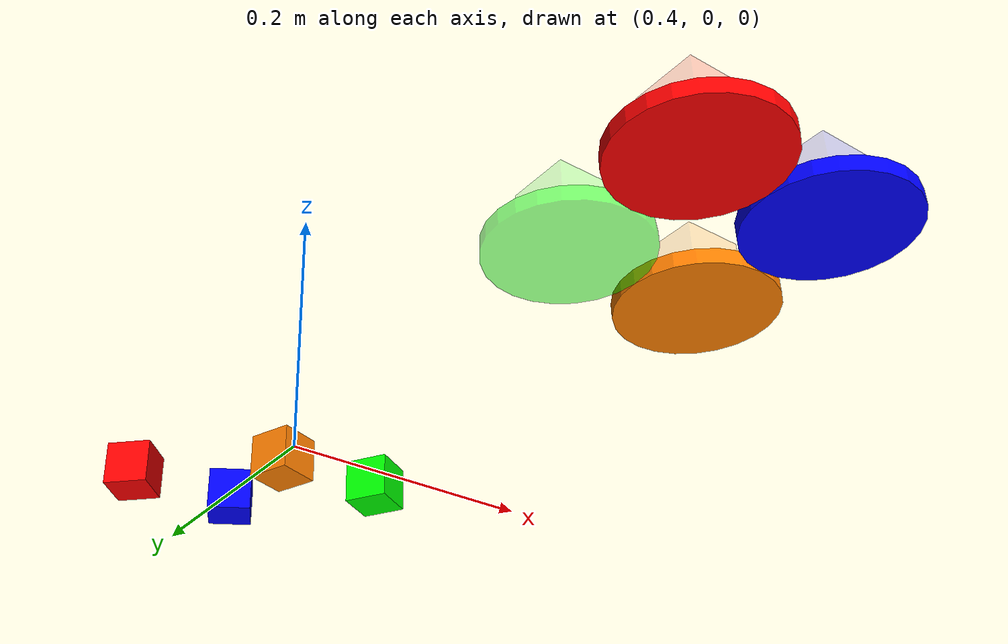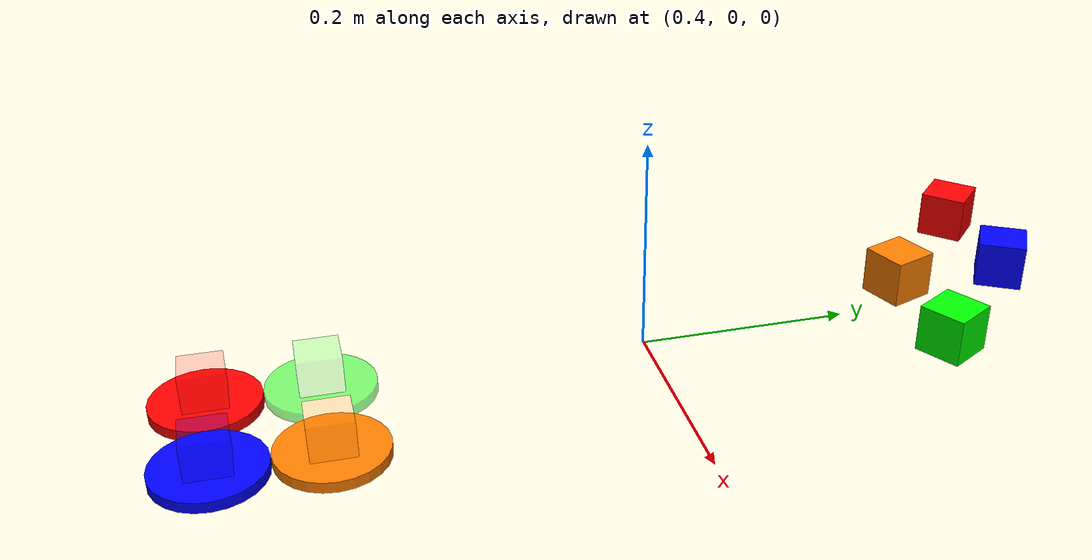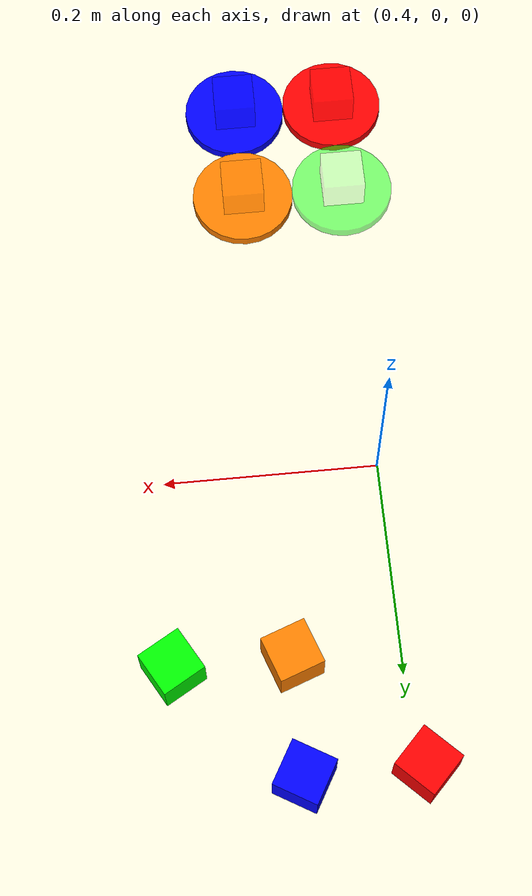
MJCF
<mujoco>
    <worldbody>
        <body name="red_block" pos="0.4 0.3 0.1" quat="0.942 0 0 -0.383">
            <freejoint/>
            <geom size="0.02 0.02 0.02" rgba="1 0 0 1" type="box" conaffinity="0" contype="0" group="1"/>
            <geom size="0.02 0.02 0.02" type="box" conaffinity="1" condim="4" contype="1" group="4" mass="0.0001" friction="1 0.005 0.0001" solimp="1 1 1" solref="0.00001 1"/>
            <site name="red_block" pos="0 0 0" size="0.02" rgba="1 0 0 0.5" type="sphere" />
        </body>

        <body name="green_block" pos="0.6 0.2 0.1" quat="0.966 0 0 0.259">
            <freejoint/>
            <geom size="0.02 0.02 0.02" rgba="0 1 0 1" type="box" conaffinity="0" contype="0" group="1"/>
            <geom size="0.02 0.02 0.02" type="box" conaffinity="1" contype="1" condim="4" group="4" mass="0.0001" friction="1 0.005 0.0001" solimp="1 1 1" solref="0.00001 1"/>
            <site name="green_block" pos="0 0 0" size="0.02" rgba="0 1 0 0.5" type="sphere" />
        </body>

        <body name="blue_block" pos="0.5 0.3 0.1" quat="0.866 0 0 0.5">
            <freejoint/>
            <geom size="0.02 0.02 0.02" rgba="0 0 1 1" type="box" conaffinity="0" contype="0" group="1"/>
            <geom size="0.02 0.02 0.02" type="box" conaffinity="1" condim="4" contype="1" group="4" mass="0.0001" friction="1 0.005 0.0001" solimp="1 1 1" solref="0.00001 1"/>
            <site name="blue_block" pos="0 0 0" size="0.02" rgba="0 0 1 0.5" type="sphere" />
        </body>

        <body name="orange_block" pos="0.5 0.2 0.1" quat="0.985 0 0 0.174">
            <freejoint/>
            <geom size="0.02 0.02 0.02" rgba="1 0.5 0 1" type="box" conaffinity="0" contype="0" group="1"/>
            <geom size="0.02 0.02 0.02" type="box" conaffinity="1" condim="4" contype="1" group="4" mass="0.0001" friction="1 0.005 0.0001" solimp="1 1 1" solref="0.00001 1"/>
            <site name="orange_block" pos="0 0 0" size="0.02" rgba="1 0.5 0 0.5" type="sphere" />
        </body>

        <body name="red_box" pos="0.4 -0.4 0">
            <geom size="0.05 0.005" rgba="1 0 0 1" type="cylinder" conaffinity="0" contype="0" group="1"/>
            <site pos="0 0 0.02" size="0.02 0.02 0.02" rgba="1 0 0 .2" type="box" />
        </body>

        <body name="green_box" pos="0.4 -0.3 0">
            <geom size="0.05 0.005" rgba="0 1 0 0.5" type="cylinder" conaffinity="0" contype="0" group="1"/>
            <site pos="0 0 0.02" size="0.02 0.02 0.02" rgba="0 1 0 .2" type="box" />
        </body>

        <body name="blue_box" pos="0.5 -0.4 0">
            <geom size="0.05 0.005" rgba="0 0 1 1" type="cylinder" conaffinity="0" contype="0" group="1"/>
            <site pos="0 0 0.02" size="0.02 0.02 0.02" rgba="0 0 1 .2" type="box" />
        </body>

        <body name="orange_box" pos="0.5 -0.3 0">
            <geom size="0.05 0.005" rgba="1 0.5 0 1" type="cylinder" conaffinity="0" contype="0" group="1"/>
            <site pos="0 0 0.02" size="0.02 0.02 0.02" rgba="1 0.5 0 .2" type="box" />
        </body>

    </worldbody>

</mujoco>
